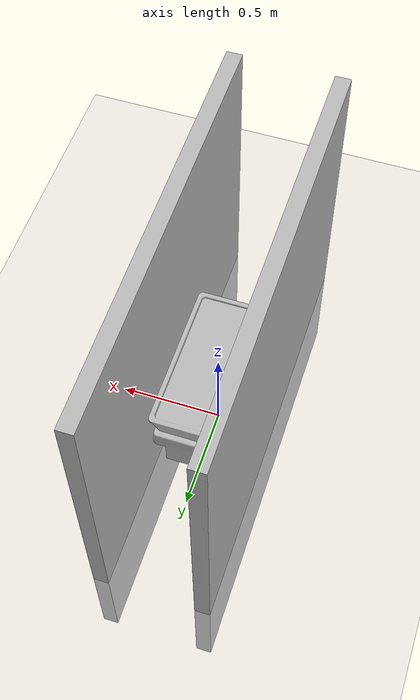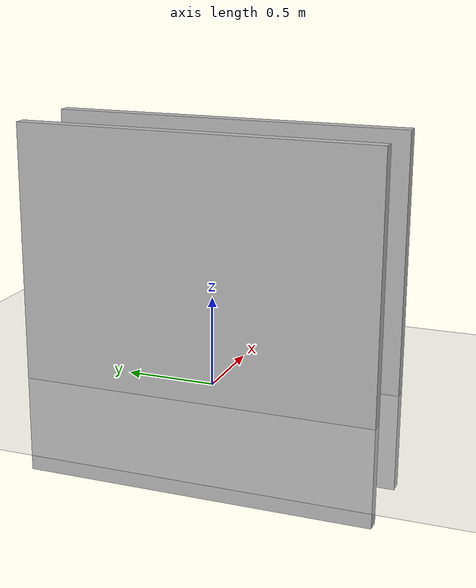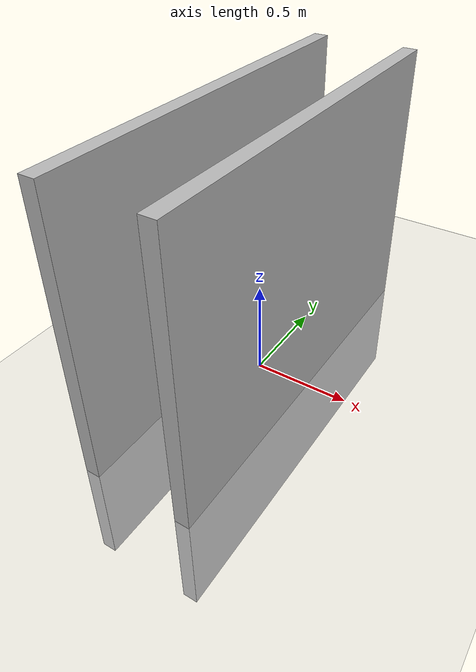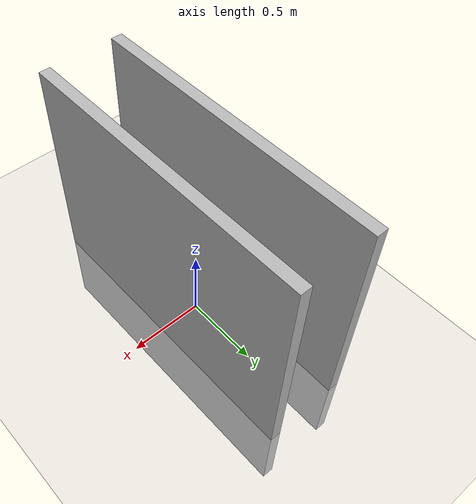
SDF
<?xml version="1.0"?>
<sdf version="1.6">
  <world name="default">
    <grid>false</grid>

    <include>
      <uri>model://Aruco_0</uri>   <!-- 10 by 10 -->
		<pose>-0.21 0 0.34 0 0 1.57</pose>  <!-- 25 cm above -->
    </include>

    <include>
      <uri>model://Aruco_0</uri>   <!-- 10 by 10 -->
		<pose>0.21 0 0.34 0 0 -1.57</pose>  <!-- 25 cm above -->
  </include>

    <include>
      <uri>model://trough</uri>
		<pose>0 0 0.09 1.57 0 1.57</pose>
    </include>

    <include>
      <uri>model://sun</uri>
    </include>

   <include>
      <uri>model://ground_plane</uri>
    </include>

  </world>
</sdf>

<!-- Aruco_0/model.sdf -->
<sdf version="1.6">
  <model name="start_zone">
    <static>true</static>
    <link name="link">

      <visual name="visual1">
        <cast_shadows>false</cast_shadows>
	      <pose> 0 0 0.1 0 0 0</pose>
        <geometry>
          <mesh>
            <uri>model://Aruco_0/meshes/start_zone.obj</uri>

          </mesh>
        </geometry>
      </visual>

    </link>
  </model>
</sdf>

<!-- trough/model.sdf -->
<sdf version="1.6">
    <model name="trough">
	   <static>true</static>
      <link name="trough_link">

        <visual name="visual">
          <geometry>
            <mesh><uri>model://trough/meshes/truf_brick.obj</uri></mesh>
          </geometry>
        </visual>

        <collision name="collision">
          <pose>0 0.3 0 0 0 0</pose>
          <geometry>
          <box>
            <size>0.75 0.2 0.42</size>
          </box>
           </geometry>
        </collision>
      </link>

    </model>
</sdf>
